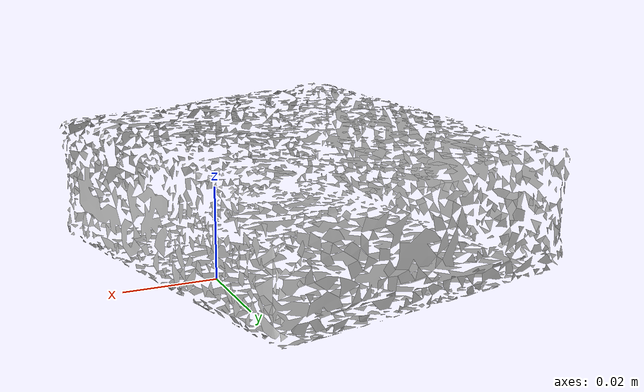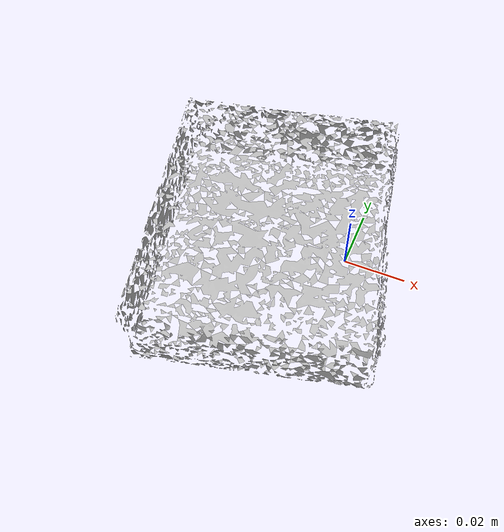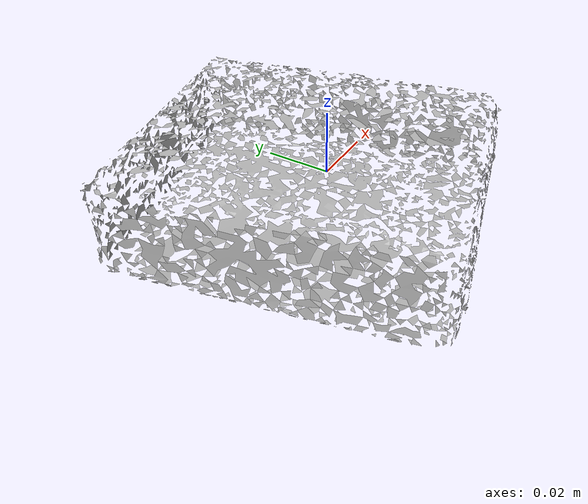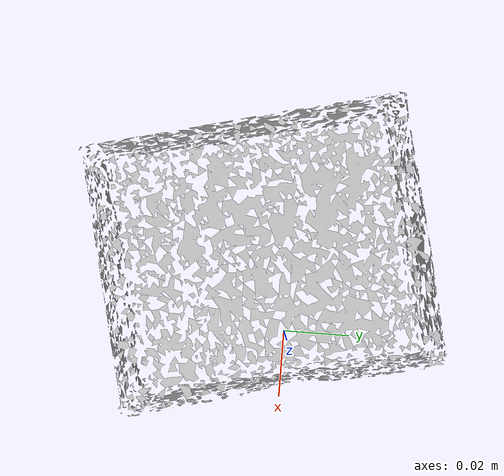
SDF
<?xml version='1.0'?>
<sdf version="1.4">
  <model name="gelatin_box">
    <static>false</static>
    <link name="link">
      <inertial>
        <pose>-0.02267551794293906 -0.007860203252540228 0.013877966045089096 -0.3812962283595559 -1.5653302217381688 -0.9614836103308723</pose>
        <mass>0.0001730558194301085</mass>
        <inertia>
          <ixx>1.808808464126736e-07</ixx>
          <ixy>6.113115423463839e-25</ixy>
          <ixz>-1.4814788129171623e-24</ixz>
          <iyy>1.1880213011661254e-07</iyy>
          <iyz>-1.4283454914444106e-23</iyz>
          <izz>8.422039755656733e-08</izz>
        </inertia>
      </inertial>
      <collision name="collision">
        <geometry>
          <mesh>
            <!-- Use a downsampled mesh for collisions -->
            <uri>model://009_gelatin_box/downsampled.obj</uri>
	        </mesh>
        </geometry>
        <surface>
      </surface>
      </collision>
      <visual name="visual">
        <geometry>
          <mesh>
            <uri>model://009_gelatin_box/google_16k/textured.obj</uri>
	        </mesh>
        </geometry>
        <material>
          <script>
            <uri>model://009_gelatin_box/gelatin_box.material</uri>
            <name>gelatin_box</name>
          </script>
        </material>
      </visual>
    </link>
  </model>
</sdf>
